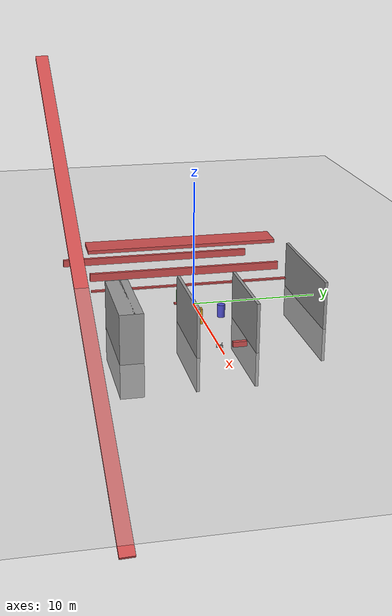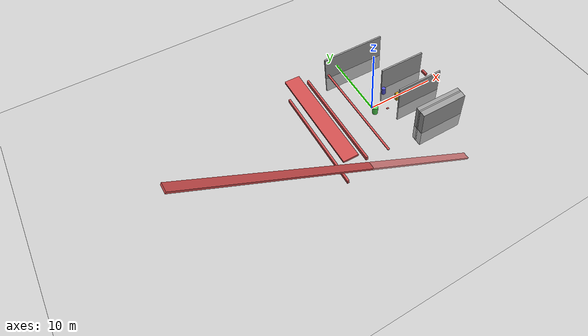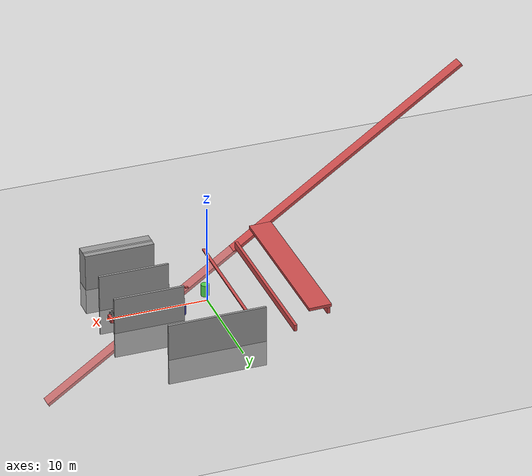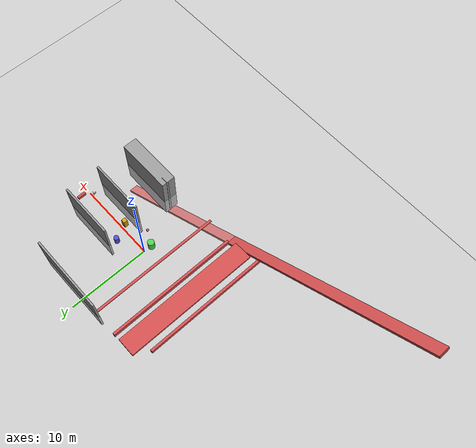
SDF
<sdf version="1.7">
 <world name="default">
  <model name="ground_plane">
   <static>1</static>
   <link name="link">
    <collision name="collision">
     <geometry><plane><normal>0 0 1</normal><size>100 100</size></plane></geometry>
     <surface>
      <contact><collide_bitmask>65535</collide_bitmask></contact>
      <friction><ode><mu>100</mu><mu2>50</mu2></ode></friction>
     </surface>
    </collision>
    <visual name="visual">
     <cast_shadows>0</cast_shadows>
     <geometry><plane><normal>0 0 1</normal><size>100 100</size></plane></geometry>
     <material>
      <script><uri>file://media/materials/scripts/gazebo.material</uri><name>Gazebo/Grey</name></script>
     </material>
    </visual>
   </link>
  </model>
  <light name="sun" type="directional">
   <pose>0 0 10 0 -0 0</pose>
   <diffuse>0.8 0.8 0.8 1</diffuse>
   <specular>0.2 0.2 0.2 1</specular>
   <attenuation>
    <range>1000</range>
    <constant>0.9</constant>
    <linear>0.01</linear>
    <quadratic>0.001</quadratic>
   </attenuation>
   <direction>-0.5 0.1 -0.9</direction>
   <spot><inner_angle>0</inner_angle><outer_angle>0</outer_angle><falloff>0</falloff></spot>
  </light>
  <model name="wall_front">
   <static>1</static>
   <pose>1.47625 -1.78719 0.75 0 -0 0</pose>
   <link name="link">
    <visual name="vis">
     <geometry><box><size>0.3 0.242382 0.078561</size></box></geometry>
     <material><ambient>0.8 0.3 0.3 1</ambient></material>
    </visual>
    <collision name="col"><geometry><box><size>0.3 0.242382 0.078561</size></box></geometry></collision>
   </link>
  </model>
  <model name="cyl_left">
   <static>1</static>
   <pose>-0.114617 -1 0.6 0 -0 0</pose>
   <link name="link">
    <visual name="vis">
     <geometry><cylinder><radius>0.4</radius><length>1.2</length></cylinder></geometry>
     <material><ambient>0.3 0.8 0.3 1</ambient></material>
    </visual>
    <collision name="col">
     <geometry><cylinder><radius>0.4</radius><length>1.2</length></cylinder></geometry>
    </collision>
   </link>
  </model>
  <model name="cyl_right">
   <static>1</static>
   <pose>3 1.5 0.5 0 -0 0</pose>
   <link name="link">
    <visual name="vis">
     <geometry><cylinder><radius>0.3</radius><length>1</length></cylinder></geometry>
     <material><ambient>0.3 0.3 0.8 1</ambient></material>
    </visual>
    <collision name="col">
     <geometry><cylinder><radius>0.3</radius><length>1</length></cylinder></geometry>
    </collision>
   </link>
  </model>
  <model name="box_right">
   <static>1</static>
   <pose>4 -0.5 0.6 0 -0 0</pose>
   <link name="link">
    <visual name="vis">
     <geometry><box><size>0.5 0.5 1.2</size></box></geometry>
     <material><ambient>0.8 0.6 0.1 1</ambient></material>
    </visual>
    <collision name="col"><geometry><box><size>0.5 0.5 1.2</size></box></geometry></collision>
   </link>
  </model>
  <gravity>0 0 -9.8</gravity>
  <magnetic_field>6e-06 2.3e-05 -4.2e-05</magnetic_field>
  <atmosphere type="adiabatic"/>
  <physics type="ode">
   <max_step_size>0.001</max_step_size>
   <real_time_factor>1</real_time_factor>
   <real_time_update_rate>1000</real_time_update_rate>
  </physics>
  <scene><ambient>0.4 0.4 0.4 1</ambient><background>0.7 0.7 0.7 1</background><shadows>1</shadows></scene>
  <spherical_coordinates>
   <surface_model>EARTH_WGS84</surface_model>
   <latitude_deg>0</latitude_deg>
   <longitude_deg>0</longitude_deg>
   <elevation>0</elevation>
   <heading_deg>0</heading_deg>
  </spherical_coordinates>
  <model name="tabv">
   <link name="base_link">
    <inertial>
     <mass>1.5</mass>
     <inertia><ixx>0.05</ixx><ixy>0</ixy><ixz>0</ixz><iyy>0.05</iyy><iyz>0</iyz><izz>0.08</izz></inertia>
    </inertial>
    <collision name="base_link_collision"><geometry><box><size>0.5 0.4 0.2</size></box></geometry></collision>
    <visual name="base_link_visual">
     <geometry>
      <mesh>
       <scale>1 1 1</scale>
       <uri>/home/panyu/Terrestrial-Aerial-Navigation/src/gazebo_sim/meshes/TABV.dae</uri>
      </mesh>
     </geometry>
    </visual>
    <visual name="base_link_fixed_joint_lump__depth_cam_visual_1">
     <pose>0.24 0 0.17 3.14159 1.57079 3.14159</pose>
     <geometry><cylinder><length>0.04</length><radius>0.015</radius></cylinder></geometry>
    </visual>
    <gravity>0</gravity>
    <sensor name="d435_camera" type="depth">
     <always_on>1</always_on>
     <update_rate>30</update_rate>
     <camera>
      <horizontal_fov>1.51844</horizontal_fov>
      <image><width>640</width><height>480</height></image>
      <clip><near>0.05</near><far>8</far></clip>
     </camera>
     <plugin name="d435_plugin" filename="libgazebo_ros_depth_camera.so">
      <cameraName>d435</cameraName>
      <alwaysOn>1</alwaysOn>
      <updateRate>30</updateRate>
      <imageTopicName>color/image_raw</imageTopicName>
      <depthImageTopicName>depth/image_raw</depthImageTopicName>
      <depthImageCameraInfoTopicName>depth/camera_info</depthImageCameraInfoTopicName>
      <pointCloudTopicName>depth/points</pointCloudTopicName>
      <frameName>depth_cam</frameName>
      <clipNear>0.05</clipNear>
      <clipFar>8.0</clipFar>
      <hackBaseline>0.0</hackBaseline>
      <CxPrime>0</CxPrime>
      <Cx>320.0</Cx>
      <Cy>240.0</Cy>
      <focalLength>337.2</focalLength>
      <robotNamespace>/</robotNamespace>
     </plugin>
     <pose>0.26 0 0.17 0 -0 0</pose>
    </sensor>
   </link>
   <plugin name="p3d" filename="libgazebo_ros_p3d.so">
    <alwaysOn>1</alwaysOn>
    <updateRate>100</updateRate>
    <bodyName>base_link</bodyName>
    <topicName>ground_truth/odom</topicName>
    <frameName>world</frameName>
    <xyzOffsets>0 0 0</xyzOffsets>
    <rpyOffsets>0 0 0</rpyOffsets>
    <robotNamespace>/</robotNamespace>
   </plugin>
   <frame name="cam_joint" attached_to="base_link"><pose>0.26 0 0.17 0 -0 0</pose></frame>
   <frame name="depth_cam" attached_to="cam_joint"/>
   <pose>9.47964 -0.217168 0.296645 0 0 -0.011431</pose>
  </model>
  <model name="wall_front_clone">
   <static>1</static>
   <pose>-2.40374 0.213565 0.75 0 -0 0</pose>
   <link name="link">
    <visual name="vis">
     <geometry><box><size>0.3 16.2495 0.11387</size></box></geometry>
     <material><ambient>0.8 0.3 0.3 1</ambient></material>
    </visual>
    <collision name="col"><geometry><box><size>0.3 16.2495 0.11387</size></box></geometry></collision>
   </link>
  </model>
  <model name="Untitled">
   <link name="link_0">
    <inertial>
     <mass>14.2696</mass>
     <inertia><ixx>48.2133</ixx><ixy>0</ixy><ixz>0</ixz><iyy>158.84</iyy><iyz>0</iyz><izz>110.755</izz></inertia>
    </inertial>
    <pose>-3.73678 9.37764 0 0 -0 0</pose>
    <visual name="visual">
     <geometry><box><size>9.64809 0.232379 6.36325</size></box></geometry>
     <material>
      <lighting>1</lighting>
      <script><uri>file://media/materials/scripts/gazebo.material</uri><name>Gazebo/Grey</name></script>
      <shader type="pixel"/>
     </material>
    </visual>
    <collision name="collision">
     <geometry><box><size>9.64809 0.232379 6.36325</size></box></geometry>
     <surface>
      <friction>
       <ode><mu>1</mu><mu2>1</mu2><fdir1>0 0 0</fdir1><slip1>0</slip1><slip2>0</slip2></ode>
       <torsional>
        <coefficient>1</coefficient>
        <patch_radius>0</patch_radius>
        <surface_radius>0</surface_radius>
        <use_patch_radius>1</use_patch_radius>
        <ode><slip>0</slip></ode>
       </torsional>
      </friction>
      <bounce><restitution_coefficient>0</restitution_coefficient><threshold>1e+06</threshold></bounce>
      <contact>
       <collide_without_contact>0</collide_without_contact>
       <collide_without_contact_bitmask>1</collide_without_contact_bitmask>
       <collide_bitmask>1</collide_bitmask>
       <ode>
        <soft_cfm>0</soft_cfm>
        <soft_erp>0.2</soft_erp>
        <kp>1e+13</kp>
        <kd>1</kd>
        <max_vel>0.01</max_vel>
        <min_depth>0</min_depth>
       </ode>
       <bullet>
        <split_impulse>1</split_impulse>
        <split_impulse_penetration_threshold>-0.01</split_impulse_penetration_threshold>
        <soft_cfm>0</soft_cfm>
        <soft_erp>0.2</soft_erp>
        <kp>1e+13</kp>
        <kd>1</kd>
       </bullet>
      </contact>
     </surface>
    </collision>
   </link>
   <link name="link_0_clone">
    <inertial>
     <mass>10.2728</mass>
     <inertia><ixx>34.7092</ixx><ixy>0</ixy><ixz>0</ixz><iyy>75.9624</iyy><iyz>0</iyz><izz>41.3457</izz></inertia>
    </inertial>
    <pose>0.859265 3.25045 0 0 -0 0</pose>
    <visual name="visual">
     <geometry><box><size>6.94574 0.232379 6.36325</size></box></geometry>
     <material>
      <lighting>1</lighting>
      <script><uri>file://media/materials/scripts/gazebo.material</uri><name>Gazebo/Grey</name></script>
      <shader type="pixel"/>
     </material>
    </visual>
    <collision name="collision">
     <geometry><box><size>6.94574 0.232379 6.36325</size></box></geometry>
     <surface>
      <friction>
       <ode><mu>1</mu><mu2>1</mu2><fdir1>0 0 0</fdir1><slip1>0</slip1><slip2>0</slip2></ode>
       <torsional>
        <coefficient>1</coefficient>
        <patch_radius>0</patch_radius>
        <surface_radius>0</surface_radius>
        <use_patch_radius>1</use_patch_radius>
        <ode><slip>0</slip></ode>
       </torsional>
      </friction>
      <bounce><restitution_coefficient>0</restitution_coefficient><threshold>1e+06</threshold></bounce>
      <contact>
       <collide_without_contact>0</collide_without_contact>
       <collide_without_contact_bitmask>1</collide_without_contact_bitmask>
       <collide_bitmask>1</collide_bitmask>
       <ode>
        <soft_cfm>0</soft_cfm>
        <soft_erp>0.2</soft_erp>
        <kp>1e+13</kp>
        <kd>1</kd>
        <max_vel>0.01</max_vel>
        <min_depth>0</min_depth>
       </ode>
       <bullet>
        <split_impulse>1</split_impulse>
        <split_impulse_penetration_threshold>-0.01</split_impulse_penetration_threshold>
        <soft_cfm>0</soft_cfm>
        <soft_erp>0.2</soft_erp>
        <kp>1e+13</kp>
        <kd>1</kd>
       </bullet>
      </contact>
     </surface>
    </collision>
   </link>
   <link name="link_0_clone_clone">
    <inertial>
     <mass>10.2728</mass>
     <inertia><ixx>34.7092</ixx><ixy>0</ixy><ixz>0</ixz><iyy>75.9624</iyy><iyz>0</iyz><izz>41.3457</izz></inertia>
    </inertial>
    <pose>0.90707 -1.09514 0 0 -0 0</pose>
    <visual name="visual">
     <geometry><box><size>6.94574 0.232379 6.36325</size></box></geometry>
     <material>
      <lighting>1</lighting>
      <script><uri>file://media/materials/scripts/gazebo.material</uri><name>Gazebo/Grey</name></script>
      <shader type="pixel"/>
      <emissive>0 0 0 1</emissive>
     </material>
    </visual>
    <collision name="collision">
     <geometry><box><size>6.94574 0.232379 6.36325</size></box></geometry>
     <surface>
      <friction>
       <ode><mu>1</mu><mu2>1</mu2><fdir1>0 0 0</fdir1><slip1>0</slip1><slip2>0</slip2></ode>
       <torsional>
        <coefficient>1</coefficient>
        <patch_radius>0</patch_radius>
        <surface_radius>0</surface_radius>
        <use_patch_radius>1</use_patch_radius>
        <ode><slip>0</slip></ode>
       </torsional>
      </friction>
      <bounce><restitution_coefficient>0</restitution_coefficient><threshold>1e+06</threshold></bounce>
      <contact>
       <collide_without_contact>0</collide_without_contact>
       <collide_without_contact_bitmask>1</collide_without_contact_bitmask>
       <collide_bitmask>1</collide_bitmask>
       <ode>
        <soft_cfm>0</soft_cfm>
        <soft_erp>0.2</soft_erp>
        <kp>1e+13</kp>
        <kd>1</kd>
        <max_vel>0.01</max_vel>
        <min_depth>0</min_depth>
       </ode>
       <bullet>
        <split_impulse>1</split_impulse>
        <split_impulse_penetration_threshold>-0.01</split_impulse_penetration_threshold>
        <soft_cfm>0</soft_cfm>
        <soft_erp>0.2</soft_erp>
        <kp>1e+13</kp>
        <kd>1</kd>
       </bullet>
      </contact>
     </surface>
    </collision>
   </link>
   <link name="link_0_clone_clone_0">
    <inertial>
     <mass>76.7642</mass>
     <inertia><ixx>278.313</ixx><ixy>0</ixy><ixz>0</ixz><iyy>567.634</iyy><iyz>0</iyz><izz>327.905</izz></inertia>
    </inertial>
    <pose>0.998133 -5.846 0 0 -0 0</pose>
    <visual name="visual">
     <geometry><box><size>6.94574 1.7366 6.36325</size></box></geometry>
     <material>
      <lighting>1</lighting>
      <script><uri>file://media/materials/scripts/gazebo.material</uri><name>Gazebo/Grey</name></script>
      <shader type="pixel"/>
      <emissive>0 0 0 1</emissive>
     </material>
    </visual>
    <collision name="collision">
     <geometry><box><size>6.94574 1.7366 6.36325</size></box></geometry>
     <surface>
      <friction>
       <ode><mu>1</mu><mu2>1</mu2><fdir1>0 0 0</fdir1><slip1>0</slip1><slip2>0</slip2></ode>
       <torsional>
        <coefficient>1</coefficient>
        <patch_radius>0</patch_radius>
        <surface_radius>0</surface_radius>
        <use_patch_radius>1</use_patch_radius>
        <ode><slip>0</slip></ode>
       </torsional>
      </friction>
      <bounce><restitution_coefficient>0</restitution_coefficient><threshold>1e+06</threshold></bounce>
      <contact>
       <collide_without_contact>0</collide_without_contact>
       <collide_without_contact_bitmask>1</collide_without_contact_bitmask>
       <collide_bitmask>1</collide_bitmask>
       <ode>
        <soft_cfm>0</soft_cfm>
        <soft_erp>0.2</soft_erp>
        <kp>1e+13</kp>
        <kd>1</kd>
        <max_vel>0.01</max_vel>
        <min_depth>0</min_depth>
       </ode>
       <bullet>
        <split_impulse>1</split_impulse>
        <split_impulse_penetration_threshold>-0.01</split_impulse_penetration_threshold>
        <soft_cfm>0</soft_cfm>
        <soft_erp>0.2</soft_erp>
        <kp>1e+13</kp>
        <kd>1</kd>
       </bullet>
      </contact>
     </surface>
    </collision>
   </link>
   <link name="link_0_clone_clone_clone">
    <inertial>
     <mass>10.2728</mass>
     <inertia><ixx>34.7092</ixx><ixy>0</ixy><ixz>0</ixz><iyy>75.9624</iyy><iyz>0</iyz><izz>41.3457</izz></inertia>
    </inertial>
    <pose>0.972318 -5.68694 0 0 -0 0</pose>
    <visual name="visual">
     <geometry><box><size>6.94574 0.232379 6.36325</size></box></geometry>
     <material>
      <lighting>1</lighting>
      <script><uri>file://media/materials/scripts/gazebo.material</uri><name>Gazebo/Grey</name></script>
      <shader type="pixel"/>
     </material>
    </visual>
    <collision name="collision">
     <geometry><box><size>6.94574 0.232379 6.36325</size></box></geometry>
     <surface>
      <friction>
       <ode><mu>1</mu><mu2>1</mu2><fdir1>0 0 0</fdir1><slip1>0</slip1><slip2>0</slip2></ode>
       <torsional>
        <coefficient>1</coefficient>
        <patch_radius>0</patch_radius>
        <surface_radius>0</surface_radius>
        <use_patch_radius>1</use_patch_radius>
        <ode><slip>0</slip></ode>
       </torsional>
      </friction>
      <bounce><restitution_coefficient>0</restitution_coefficient><threshold>1e+06</threshold></bounce>
      <contact>
       <collide_without_contact>0</collide_without_contact>
       <collide_without_contact_bitmask>1</collide_without_contact_bitmask>
       <collide_bitmask>1</collide_bitmask>
       <ode>
        <soft_cfm>0</soft_cfm>
        <soft_erp>0.2</soft_erp>
        <kp>1e+13</kp>
        <kd>1</kd>
        <max_vel>0.01</max_vel>
        <min_depth>0</min_depth>
       </ode>
       <bullet>
        <split_impulse>1</split_impulse>
        <split_impulse_penetration_threshold>-0.01</split_impulse_penetration_threshold>
        <soft_cfm>0</soft_cfm>
        <soft_erp>0.2</soft_erp>
        <kp>1e+13</kp>
        <kd>1</kd>
       </bullet>
      </contact>
     </surface>
    </collision>
   </link>
   <static>0</static>
   <pose>5.7985 -0.828823 0.5 0 -0 0</pose>
  </model>
  <model name="wall_front_clone_0">
   <static>1</static>
   <pose>10.0229 1.10329 0.75 0 -0 0</pose>
   <link name="link">
    <visual name="vis">
     <geometry><box><size>0.3 1.00841 0.383758</size></box></geometry>
     <material><ambient>0.8 0.3 0.3 1</ambient></material>
    </visual>
    <collision name="col"><geometry><box><size>0.3 1.00841 0.383758</size></box></geometry></collision>
   </link>
  </model>
  <model name="wall_front_clone_clone">
   <static>1</static>
   <pose>-7.70096 -8.42023 1.27017 1.6098 -0.981728 -0.017259</pose>
   <link name="link">
    <visual name="vis">
     <geometry><box><size>0.3 52.128 1.22421</size></box></geometry>
     <material><ambient>0.8 0.3 0.3 1</ambient></material>
    </visual>
    <collision name="col"><geometry><box><size>0.3 52.128 1.22421</size></box></geometry></collision>
   </link>
  </model>
  <model name="wall_front_clone_clone_0">
   <static>1</static>
   <pose>-5.68221 0.530922 0.75 0 -0 0</pose>
   <link name="link">
    <visual name="vis">
     <geometry><box><size>0.3 16.2495 0.650469</size></box></geometry>
     <material><ambient>0.8 0.3 0.3 1</ambient></material>
    </visual>
    <collision name="col"><geometry><box><size>0.3 16.2495 0.650469</size></box></geometry></collision>
   </link>
  </model>
  <model name="wall_front_clone_clone_1">
   <static>1</static>
   <pose>-9.69376 -1.28748 0.75 0 -0 0</pose>
   <link name="link">
    <visual name="vis">
     <geometry><box><size>0.3 16.2495 0.594476</size></box></geometry>
     <material><ambient>0.8 0.3 0.3 1</ambient></material>
    </visual>
    <collision name="col"><geometry><box><size>0.3 16.2495 0.594476</size></box></geometry></collision>
   </link>
  </model>
  <model name="wall_front_clone_clone_0_clone">
   <static>1</static>
   <pose>-8.11567 0.58689 2.51772 0 -1.54756 0</pose>
   <link name="link">
    <visual name="vis">
     <geometry><box><size>0.3 16.2495 2.258</size></box></geometry>
     <material><ambient>0.8 0.3 0.3 1</ambient></material>
    </visual>
    <collision name="col"><geometry><box><size>0.3 16.2495 2.258</size></box></geometry></collision>
   </link>
  </model>
 </world>
</sdf>
